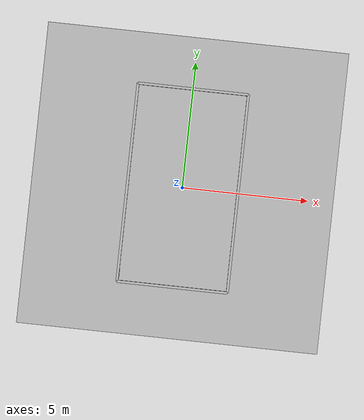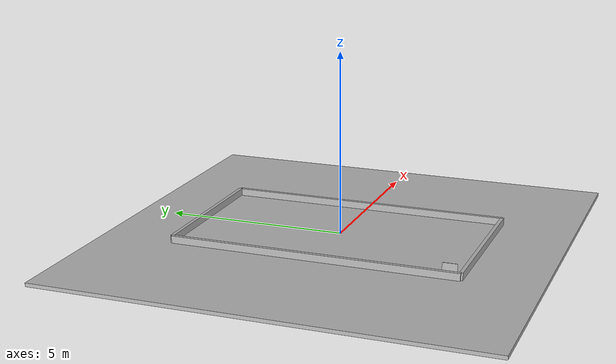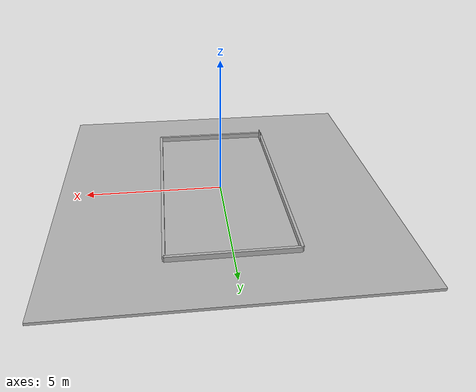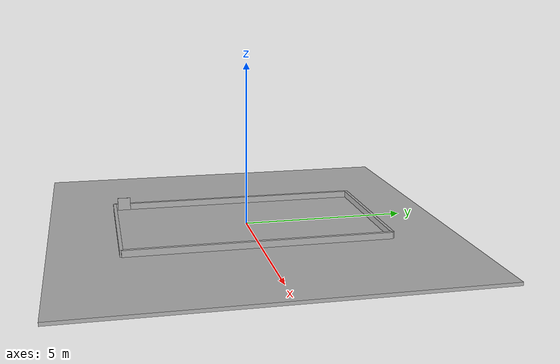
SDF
<?xml version="1.0"?>
<sdf version="1.6">
  <world name="lunabotics_uk_arena">

    <!-- PHYSICS -->
    <physics type="ode">
      <gravity>0 0 -9.81</gravity>
    </physics>

    <light type="directional" name="sun">
      <pose>0 0 10 0 0 0</pose>
      <direction>-0.5 0.1 -0.9</direction>
    </light>

    <!-- PHYSICAL ARENA -->
    <model name="arena_ground">
      <static>true</static>
      <link name="link">
        <collision name="collision">
          <geometry><box><size>12 12 0.1</size></box></geometry>
        </collision>
        <visual name="visual">
          <geometry><box><size>12 12 0.1</size></box></geometry>
          <material>
            <script>
              <uri>model://regolith_model/materials/scripts/regolith.material</uri>
              <uri>model://regolith_model/materials/textures/</uri>
              <name>Regolith/Ground</name>
            </script>
          </material>
        </visual>
        <pose>0 0 -0.05 0 0 0</pose>
      </link>
    </model>

    <model name="wall_south">
      <static>true</static>
      <link name="link">
        <collision name="collision">
          <geometry><box><size>4.4 0.1 0.2</size></box></geometry>
        </collision>
        <visual name="visual">
          <geometry><box><size>4.4 0.1 0.2</size></box></geometry>
          <material>
            <script>
              <uri>model://regolith_model/materials/scripts/regolith.material</uri>
              <uri>model://regolith_model/materials/textures/</uri>
              <name>Regolith/WallShort</name>
            </script>
          </material>
        </visual>
        <pose>0 -3.95 0.1 0 0 0</pose>
      </link>
    </model>

    <model name="wall_north">
      <static>true</static>
      <link name="link">
        <collision name="collision">
          <geometry><box><size>4.4 0.1 0.2</size></box></geometry>
        </collision>
        <visual name="visual">
          <geometry><box><size>4.4 0.1 0.2</size></box></geometry>
          <material>
            <script>
              <uri>model://regolith_model/materials/scripts/regolith.material</uri>
              <uri>model://regolith_model/materials/textures/</uri>
              <name>Regolith/WallShort</name>
            </script>
          </material>
        </visual>
        <pose>0 3.95 0.1 0 0 0</pose>
      </link>
    </model>

    <model name="wall_west">
      <static>true</static>
      <link name="link">
        <collision name="collision">
          <geometry><box><size>0.1 7.9 0.2</size></box></geometry>
        </collision>
        <visual name="visual">
          <geometry><box><size>0.1 7.9 0.2</size></box></geometry>
          <material>
            <script>
              <uri>model://regolith_model/materials/scripts/regolith.material</uri>
              <uri>model://regolith_model/materials/textures/</uri>
              <name>Regolith/WallLong</name>
            </script>
          </material>
        </visual>
        <pose>-2.2 0 0.1 0 0 0</pose>
      </link>
    </model>

    <model name="wall_east">
      <static>true</static>
      <link name="link">
        <collision name="collision">
          <geometry><box><size>0.1 7.9 0.2</size></box></geometry>
        </collision>
        <visual name="visual">
          <geometry><box><size>0.1 7.9 0.2</size></box></geometry>
          <material>
            <script>
              <uri>model://regolith_model/materials/scripts/regolith.material</uri>
              <uri>model://regolith_model/materials/textures/</uri>
              <name>Regolith/WallLong</name>
            </script>
          </material>
        </visual>
        <pose>2.2 0 0.1 0 0 0</pose>
      </link>
    </model>

    <!-- APRILTAG -->
    <model name="apriltag_0">
      <static>true</static>
      <pose>-2.145 -3.65 0.2 0 0 0</pose>
      <link name="link">
        <collision name="collision">
          <geometry><box><size>0.01 0.4 0.4</size></box></geometry>
        </collision>
        <visual name="visual">
          <geometry><box><size>0.01 0.4 0.4</size></box></geometry>
          <material>
            <script>
              <uri>model://apriltag_model/materials/scripts/apriltag.material</uri>
              <uri>model://apriltag_model/materials/textures/</uri>
              <name>AprilTag/tag0</name>
            </script>
          </material>
        </visual>
      </link>
    </model>

  </world>
</sdf>
